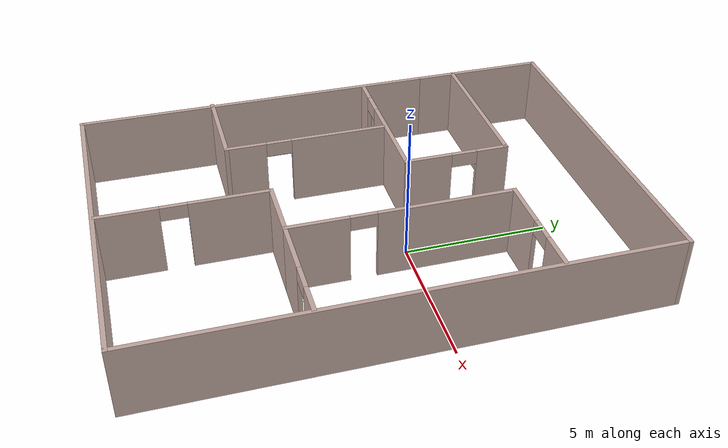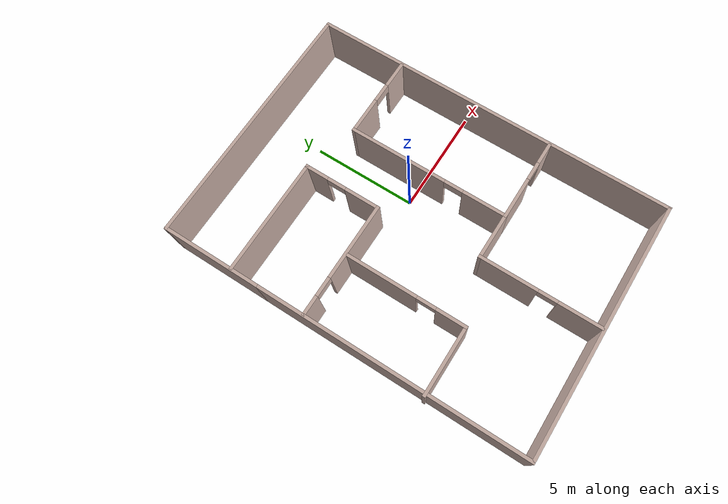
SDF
<?xml version='1.0'?>
<sdf version='1.7'>
  <model name='map3_level3'>
    <pose>-1.22338 -1.24775 0 0 -0 0</pose>
    <link name='Wall_11'>
      <collision name='Wall_11_Collision'>
        <geometry>
          <box>
            <size>5.5 0.15 2.5</size>
          </box>
        </geometry>
        <pose>0 0 1.25 0 -0 0</pose>
      </collision>
      <visual name='Wall_11_Visual'>
        <pose>0 0 1.25 0 -0 0</pose>
        <geometry>
          <box>
            <size>5.5 0.15 2.5</size>
          </box>
        </geometry>
        <material>
          <script>
            <uri>file://media/materials/scripts/gazebo.material</uri>
            <name>Gazebo/Grey</name>
          </script>
          <ambient>0.760784 0.662745 0.627451 1</ambient>
        </material>
        <meta>
          <layer>0</layer>
        </meta>
      </visual>
      <pose>-3.16034 5.33374 0 0 -0 0</pose>
    </link>
    <link name='Wall_12'>
      <pose>-0.485339 3.53374 0 0 -0 -1.5708</pose>
      <visual name='Wall_12_Visual_0'>
        <pose>-1.30105 0 1.25 0 -0 0</pose>
        <geometry>
          <box>
            <size>1.14789 0.15 2.5</size>
          </box>
        </geometry>
        <material>
          <script>
            <uri>file://media/materials/scripts/gazebo.material</uri>
            <name>Gazebo/Grey</name>
          </script>
          <ambient>0.760784 0.662745 0.627451 1</ambient>
        </material>
        <meta>
          <layer>0</layer>
        </meta>
      </visual>
      <collision name='Wall_12_Collision_0'>
        <geometry>
          <box>
            <size>1.14789 0.15 2.5</size>
          </box>
        </geometry>
        <pose>-1.30105 0 1.25 0 -0 0</pose>
      </collision>
      <visual name='Wall_12_Visual_1'>
        <pose>1.02395 0 1.25 0 -0 0</pose>
        <geometry>
          <box>
            <size>1.70211 0.15 2.5</size>
          </box>
        </geometry>
        <material>
          <script>
            <uri>file://media/materials/scripts/gazebo.material</uri>
            <name>Gazebo/Grey</name>
          </script>
          <ambient>0.760784 0.662745 0.627451 1</ambient>
        </material>
        <meta>
          <layer>0</layer>
        </meta>
      </visual>
      <collision name='Wall_12_Collision_1'>
        <geometry>
          <box>
            <size>1.70211 0.15 2.5</size>
          </box>
        </geometry>
        <pose>1.02395 0 1.25 0 -0 0</pose>
      </collision>
      <visual name='Wall_12_Visual_2'>
        <pose>-0.277106 0 2.25 0 -0 0</pose>
        <geometry>
          <box>
            <size>0.9 0.15 0.5</size>
          </box>
        </geometry>
        <material>
          <script>
            <uri>file://media/materials/scripts/gazebo.material</uri>
            <name>Gazebo/Grey</name>
          </script>
          <ambient>0.760784 0.662745 0.627451 1</ambient>
        </material>
        <meta>
          <layer>0</layer>
        </meta>
      </visual>
      <collision name='Wall_12_Collision_2'>
        <geometry>
          <box>
            <size>0.9 0.15 0.5</size>
          </box>
        </geometry>
        <pose>-0.277106 0 2.25 0 -0 0</pose>
      </collision>
    </link>
    <link name='Wall_13'>
      <pose>-3.16034 1.73374 0 0 -0 3.14159</pose>
      <visual name='Wall_13_Visual_0'>
        <pose>-0.926346 0 1.25 0 -0 0</pose>
        <geometry>
          <box>
            <size>3.64731 0.15 2.5</size>
          </box>
        </geometry>
        <material>
          <script>
            <uri>file://media/materials/scripts/gazebo.material</uri>
            <name>Gazebo/Grey</name>
          </script>
          <ambient>0.760784 0.662745 0.627451 1</ambient>
        </material>
        <meta>
          <layer>0</layer>
        </meta>
      </visual>
      <collision name='Wall_13_Collision_0'>
        <geometry>
          <box>
            <size>3.64731 0.15 2.5</size>
          </box>
        </geometry>
        <pose>-0.926346 0 1.25 0 -0 0</pose>
      </collision>
      <visual name='Wall_13_Visual_1'>
        <pose>2.27365 0 1.25 0 -0 0</pose>
        <geometry>
          <box>
            <size>0.952692 0.15 2.5</size>
          </box>
        </geometry>
        <material>
          <script>
            <uri>file://media/materials/scripts/gazebo.material</uri>
            <name>Gazebo/Grey</name>
          </script>
          <ambient>0.760784 0.662745 0.627451 1</ambient>
        </material>
        <meta>
          <layer>0</layer>
        </meta>
      </visual>
      <collision name='Wall_13_Collision_1'>
        <geometry>
          <box>
            <size>0.952692 0.15 2.5</size>
          </box>
        </geometry>
        <pose>2.27365 0 1.25 0 -0 0</pose>
      </collision>
      <visual name='Wall_13_Visual_2'>
        <pose>1.34731 0 2.25 0 -0 0</pose>
        <geometry>
          <box>
            <size>0.9 0.15 0.5</size>
          </box>
        </geometry>
        <material>
          <script>
            <uri>file://media/materials/scripts/gazebo.material</uri>
            <name>Gazebo/Grey</name>
          </script>
          <ambient>0.760784 0.662745 0.627451 1</ambient>
        </material>
        <meta>
          <layer>0</layer>
        </meta>
      </visual>
      <collision name='Wall_13_Collision_2'>
        <geometry>
          <box>
            <size>0.9 0.15 0.5</size>
          </box>
        </geometry>
        <pose>1.34731 0 2.25 0 -0 0</pose>
      </collision>
    </link>
    <link name='Wall_15'>
      <pose>3.96735 4.61084 0 0 -0 3.14159</pose>
      <visual name='Wall_15_Visual_0'>
        <pose>-1.3475 0 1.25 0 -0 0</pose>
        <geometry>
          <box>
            <size>1.305 0.15 2.5</size>
          </box>
        </geometry>
        <material>
          <script>
            <uri>file://media/materials/scripts/gazebo.material</uri>
            <name>Gazebo/Grey</name>
          </script>
          <ambient>0.760784 0.662745 0.627451 1</ambient>
        </material>
        <meta>
          <layer>0</layer>
        </meta>
      </visual>
      <collision name='Wall_15_Collision_0'>
        <geometry>
          <box>
            <size>1.305 0.15 2.5</size>
          </box>
        </geometry>
        <pose>-1.3475 0 1.25 0 -0 0</pose>
      </collision>
      <visual name='Wall_15_Visual_1'>
        <pose>1.1025 0 1.25 0 -0 0</pose>
        <geometry>
          <box>
            <size>1.795 0.15 2.5</size>
          </box>
        </geometry>
        <material>
          <script>
            <uri>file://media/materials/scripts/gazebo.material</uri>
            <name>Gazebo/Grey</name>
          </script>
          <ambient>0.760784 0.662745 0.627451 1</ambient>
        </material>
        <meta>
          <layer>0</layer>
        </meta>
      </visual>
      <collision name='Wall_15_Collision_1'>
        <geometry>
          <box>
            <size>1.795 0.15 2.5</size>
          </box>
        </geometry>
        <pose>1.1025 0 1.25 0 -0 0</pose>
      </collision>
      <visual name='Wall_15_Visual_2'>
        <pose>-0.245 0 2.25 0 -0 0</pose>
        <geometry>
          <box>
            <size>0.9 0.15 0.5</size>
          </box>
        </geometry>
        <material>
          <script>
            <uri>file://media/materials/scripts/gazebo.material</uri>
            <name>Gazebo/Grey</name>
          </script>
          <ambient>0.760784 0.662745 0.627451 1</ambient>
        </material>
        <meta>
          <layer>0</layer>
        </meta>
      </visual>
      <collision name='Wall_15_Collision_2'>
        <geometry>
          <box>
            <size>0.9 0.15 0.5</size>
          </box>
        </geometry>
        <pose>-0.245 0 2.25 0 -0 0</pose>
      </collision>
    </link>
    <link name='Wall_16'>
      <pose>2.04235 0.810843 0 0 -0 -1.5708</pose>
      <visual name='Wall_16_Visual_0'>
        <pose>-1.5225 0 1.25 0 -0 0</pose>
        <geometry>
          <box>
            <size>4.705 0.15 2.5</size>
          </box>
        </geometry>
        <material>
          <script>
            <uri>file://media/materials/scripts/gazebo.material</uri>
            <name>Gazebo/Grey</name>
          </script>
          <ambient>0.760784 0.662745 0.627451 1</ambient>
        </material>
        <meta>
          <layer>0</layer>
        </meta>
      </visual>
      <collision name='Wall_16_Collision_0'>
        <geometry>
          <box>
            <size>4.705 0.15 2.5</size>
          </box>
        </geometry>
        <pose>-1.5225 0 1.25 0 -0 0</pose>
      </collision>
      <visual name='Wall_16_Visual_1'>
        <pose>2.8025 0 1.25 0 -0 0</pose>
        <geometry>
          <box>
            <size>2.145 0.15 2.5</size>
          </box>
        </geometry>
        <material>
          <script>
            <uri>file://media/materials/scripts/gazebo.material</uri>
            <name>Gazebo/Grey</name>
          </script>
          <ambient>0.760784 0.662745 0.627451 1</ambient>
        </material>
        <meta>
          <layer>0</layer>
        </meta>
      </visual>
      <collision name='Wall_16_Collision_1'>
        <geometry>
          <box>
            <size>2.145 0.15 2.5</size>
          </box>
        </geometry>
        <pose>2.8025 0 1.25 0 -0 0</pose>
      </collision>
      <visual name='Wall_16_Visual_2'>
        <pose>1.28 0 2.25 0 -0 0</pose>
        <geometry>
          <box>
            <size>0.9 0.15 0.5</size>
          </box>
        </geometry>
        <material>
          <script>
            <uri>file://media/materials/scripts/gazebo.material</uri>
            <name>Gazebo/Grey</name>
          </script>
          <ambient>0.760784 0.662745 0.627451 1</ambient>
        </material>
        <meta>
          <layer>0</layer>
        </meta>
      </visual>
      <collision name='Wall_16_Collision_2'>
        <geometry>
          <box>
            <size>0.9 0.15 0.5</size>
          </box>
        </geometry>
        <pose>1.28 0 2.25 0 -0 0</pose>
      </collision>
    </link>
    <link name='Wall_17'>
      <pose>3.96735 -2.98916 0 0 -0 0</pose>
      <visual name='Wall_17_Visual_0'>
        <pose>-0.9825 0 1.25 0 -0 0</pose>
        <geometry>
          <box>
            <size>2.035 0.15 2.5</size>
          </box>
        </geometry>
        <material>
          <script>
            <uri>file://media/materials/scripts/gazebo.material</uri>
            <name>Gazebo/Grey</name>
          </script>
          <ambient>0.760784 0.662745 0.627451 1</ambient>
        </material>
        <meta>
          <layer>0</layer>
        </meta>
      </visual>
      <collision name='Wall_17_Collision_0'>
        <geometry>
          <box>
            <size>2.035 0.15 2.5</size>
          </box>
        </geometry>
        <pose>-0.9825 0 1.25 0 -0 0</pose>
      </collision>
      <visual name='Wall_17_Visual_1'>
        <pose>1.4675 0 1.25 0 -0 0</pose>
        <geometry>
          <box>
            <size>1.065 0.15 2.5</size>
          </box>
        </geometry>
        <material>
          <script>
            <uri>file://media/materials/scripts/gazebo.material</uri>
            <name>Gazebo/Grey</name>
          </script>
          <ambient>0.760784 0.662745 0.627451 1</ambient>
        </material>
        <meta>
          <layer>0</layer>
        </meta>
      </visual>
      <collision name='Wall_17_Collision_1'>
        <geometry>
          <box>
            <size>1.065 0.15 2.5</size>
          </box>
        </geometry>
        <pose>1.4675 0 1.25 0 -0 0</pose>
      </collision>
      <visual name='Wall_17_Visual_2'>
        <pose>0.485 0 2.25 0 -0 0</pose>
        <geometry>
          <box>
            <size>0.9 0.15 0.5</size>
          </box>
        </geometry>
        <material>
          <script>
            <uri>file://media/materials/scripts/gazebo.material</uri>
            <name>Gazebo/Grey</name>
          </script>
          <ambient>0.760784 0.662745 0.627451 1</ambient>
        </material>
        <meta>
          <layer>0</layer>
        </meta>
      </visual>
      <collision name='Wall_17_Collision_2'>
        <geometry>
          <box>
            <size>0.9 0.15 0.5</size>
          </box>
        </geometry>
        <pose>0.485 0 2.25 0 -0 0</pose>
      </collision>
    </link>
    <link name='Wall_19'>
      <pose>-2.86765 -1.18916 0 0 -0 -1.5708</pose>
      <visual name='Wall_19_Visual_0'>
        <pose>-1.1825 0 1.25 0 -0 0</pose>
        <geometry>
          <box>
            <size>3.385 0.15 2.5</size>
          </box>
        </geometry>
        <material>
          <script>
            <uri>file://media/materials/scripts/gazebo.material</uri>
            <name>Gazebo/Grey</name>
          </script>
          <ambient>0.760784 0.662745 0.627451 1</ambient>
        </material>
        <meta>
          <layer>0</layer>
        </meta>
      </visual>
      <collision name='Wall_19_Collision_0'>
        <geometry>
          <box>
            <size>3.385 0.15 2.5</size>
          </box>
        </geometry>
        <pose>-1.1825 0 1.25 0 -0 0</pose>
      </collision>
      <visual name='Wall_19_Visual_1'>
        <pose>2.1425 0 1.25 0 -0 0</pose>
        <geometry>
          <box>
            <size>1.465 0.15 2.5</size>
          </box>
        </geometry>
        <material>
          <script>
            <uri>file://media/materials/scripts/gazebo.material</uri>
            <name>Gazebo/Grey</name>
          </script>
          <ambient>0.760784 0.662745 0.627451 1</ambient>
        </material>
        <meta>
          <layer>0</layer>
        </meta>
      </visual>
      <collision name='Wall_19_Collision_1'>
        <geometry>
          <box>
            <size>1.465 0.15 2.5</size>
          </box>
        </geometry>
        <pose>2.1425 0 1.25 0 -0 0</pose>
      </collision>
      <visual name='Wall_19_Visual_2'>
        <pose>0.96 0 2.25 0 -0 0</pose>
        <geometry>
          <box>
            <size>0.9 0.15 0.5</size>
          </box>
        </geometry>
        <material>
          <script>
            <uri>file://media/materials/scripts/gazebo.material</uri>
            <name>Gazebo/Grey</name>
          </script>
          <ambient>0.760784 0.662745 0.627451 1</ambient>
        </material>
        <meta>
          <layer>0</layer>
        </meta>
      </visual>
      <collision name='Wall_19_Collision_2'>
        <geometry>
          <box>
            <size>0.9 0.15 0.5</size>
          </box>
        </geometry>
        <pose>0.96 0 2.25 0 -0 0</pose>
      </collision>
    </link>
    <link name='Wall_2'>
      <collision name='Wall_2_Collision'>
        <geometry>
          <box>
            <size>12.75 0.15 2.5</size>
          </box>
        </geometry>
        <pose>0 0 1.25 0 -0 0</pose>
      </collision>
      <visual name='Wall_2_Visual'>
        <pose>0 0 1.25 0 -0 0</pose>
        <geometry>
          <box>
            <size>12.75 0.15 2.5</size>
          </box>
        </geometry>
        <material>
          <script>
            <uri>file://media/materials/scripts/gazebo.material</uri>
            <name>Gazebo/Grey</name>
          </script>
          <ambient>0.760784 0.662745 0.627451 1</ambient>
        </material>
        <meta>
          <layer>0</layer>
        </meta>
      </visual>
      <pose>-5.88235 -2.375 0 0 -0 -1.5708</pose>
    </link>
    <link name='Wall_20'>
      <collision name='Wall_20_Collision'>
        <geometry>
          <box>
            <size>3.25 0.15 2.5</size>
          </box>
        </geometry>
        <pose>0 0 1.25 0 -0 0</pose>
      </collision>
      <visual name='Wall_20_Visual'>
        <pose>0 0 1.25 0 -0 0</pose>
        <geometry>
          <box>
            <size>3.25 0.15 2.5</size>
          </box>
        </geometry>
        <material>
          <script>
            <uri>file://media/materials/scripts/gazebo.material</uri>
            <name>Gazebo/Grey</name>
          </script>
          <ambient>0.760784 0.662745 0.627451 1</ambient>
        </material>
        <meta>
          <layer>0</layer>
        </meta>
      </visual>
      <pose>-4.41765 -3.98916 0 0 -0 3.14159</pose>
    </link>
    <link name='Wall_22'>
      <collision name='Wall_22_Collision'>
        <geometry>
          <box>
            <size>2.25 0.15 2.5</size>
          </box>
        </geometry>
        <pose>0 0 1.25 0 -0 0</pose>
      </collision>
      <visual name='Wall_22_Visual'>
        <pose>0 0 1.25 0 -0 0</pose>
        <geometry>
          <box>
            <size>2.25 0.15 2.5</size>
          </box>
        </geometry>
        <material>
          <script>
            <uri>file://media/materials/scripts/gazebo.material</uri>
            <name>Gazebo/Grey</name>
          </script>
          <ambient>0.760784 0.662745 0.627451 1</ambient>
        </material>
        <meta>
          <layer>0</layer>
        </meta>
      </visual>
      <pose>0.992353 -2.98916 0 0 -0 3.14159</pose>
    </link>
    <link name='Wall_23'>
      <pose>-0.057647 -5.78916 0 0 -0 -1.5708</pose>
      <visual name='Wall_23_Visual_0'>
        <pose>-1.4825 0 1.25 0 -0 0</pose>
        <geometry>
          <box>
            <size>2.785 0.15 2.5</size>
          </box>
        </geometry>
        <material>
          <script>
            <uri>file://media/materials/scripts/gazebo.material</uri>
            <name>Gazebo/Grey</name>
          </script>
          <ambient>0.760784 0.662745 0.627451 1</ambient>
        </material>
        <meta>
          <layer>0</layer>
        </meta>
      </visual>
      <collision name='Wall_23_Collision_0'>
        <geometry>
          <box>
            <size>2.785 0.15 2.5</size>
          </box>
        </geometry>
        <pose>-1.4825 0 1.25 0 -0 0</pose>
      </collision>
      <visual name='Wall_23_Visual_1'>
        <pose>1.8425 0 1.25 0 -0 0</pose>
        <geometry>
          <box>
            <size>2.065 0.15 2.5</size>
          </box>
        </geometry>
        <material>
          <script>
            <uri>file://media/materials/scripts/gazebo.material</uri>
            <name>Gazebo/Grey</name>
          </script>
          <ambient>0.760784 0.662745 0.627451 1</ambient>
        </material>
        <meta>
          <layer>0</layer>
        </meta>
      </visual>
      <collision name='Wall_23_Collision_1'>
        <geometry>
          <box>
            <size>2.065 0.15 2.5</size>
          </box>
        </geometry>
        <pose>1.8425 0 1.25 0 -0 0</pose>
      </collision>
      <visual name='Wall_23_Visual_2'>
        <pose>0.36 0 2.25 0 -0 0</pose>
        <geometry>
          <box>
            <size>0.9 0.15 0.5</size>
          </box>
        </geometry>
        <material>
          <script>
            <uri>file://media/materials/scripts/gazebo.material</uri>
            <name>Gazebo/Grey</name>
          </script>
          <ambient>0.760784 0.662745 0.627451 1</ambient>
        </material>
        <meta>
          <layer>0</layer>
        </meta>
      </visual>
      <collision name='Wall_23_Collision_2'>
        <geometry>
          <box>
            <size>0.9 0.15 0.5</size>
          </box>
        </geometry>
        <pose>0.36 0 2.25 0 -0 0</pose>
      </collision>
    </link>
    <link name='Wall_3'>
      <collision name='Wall_3_Collision'>
        <geometry>
          <box>
            <size>12 0.15 2.5</size>
          </box>
        </geometry>
        <pose>0 0 1.25 0 -0 0</pose>
      </collision>
      <visual name='Wall_3_Visual'>
        <pose>0 0 1.25 0 -0 0</pose>
        <geometry>
          <box>
            <size>12 0.15 2.5</size>
          </box>
        </geometry>
        <material>
          <script>
            <uri>file://media/materials/scripts/gazebo.material</uri>
            <name>Gazebo/Grey</name>
          </script>
          <ambient>0.760784 0.662745 0.627451 1</ambient>
        </material>
        <meta>
          <layer>0</layer>
        </meta>
      </visual>
      <pose>0.042645 -8.675 0 0 -0 0</pose>
    </link>
    <link name='Wall_4'>
      <collision name='Wall_4_Collision'>
        <geometry>
          <box>
            <size>17.5 0.15 2.5</size>
          </box>
        </geometry>
        <pose>0 0 1.25 0 -0 0</pose>
      </collision>
      <visual name='Wall_4_Visual'>
        <pose>0 0 1.25 0 -0 0</pose>
        <geometry>
          <box>
            <size>17.5 0.15 2.5</size>
          </box>
        </geometry>
        <material>
          <script>
            <uri>file://media/materials/scripts/gazebo.material</uri>
            <name>Gazebo/Grey</name>
          </script>
          <ambient>0.760784 0.662745 0.627451 1</ambient>
        </material>
        <meta>
          <layer>0</layer>
        </meta>
      </visual>
      <pose>5.96765 0 0 0 -0 1.5708</pose>
    </link>
    <link name='Wall_5'>
      <collision name='Wall_5_Collision'>
        <geometry>
          <box>
            <size>12 0.15 2.5</size>
          </box>
        </geometry>
        <pose>0 0 1.25 0 -0 0</pose>
      </collision>
      <visual name='Wall_5_Visual'>
        <pose>0 0 1.25 0 -0 0</pose>
        <geometry>
          <box>
            <size>12 0.15 2.5</size>
          </box>
        </geometry>
        <material>
          <script>
            <uri>file://media/materials/scripts/gazebo.material</uri>
            <name>Gazebo/Grey</name>
          </script>
          <ambient>0.760784 0.662745 0.627451 1</ambient>
        </material>
        <meta>
          <layer>0</layer>
        </meta>
      </visual>
      <pose>0.042645 8.675 0 0 -0 3.14159</pose>
    </link>
    <link name='Wall_6'>
      <collision name='Wall_6_Collision'>
        <geometry>
          <box>
            <size>4.75 0.15 2.5</size>
          </box>
        </geometry>
        <pose>0 0 1.25 0 -0 0</pose>
      </collision>
      <visual name='Wall_6_Visual'>
        <pose>0 0 1.25 0 -0 0</pose>
        <geometry>
          <box>
            <size>4.75 0.15 2.5</size>
          </box>
        </geometry>
        <material>
          <script>
            <uri>file://media/materials/scripts/gazebo.material</uri>
            <name>Gazebo/Grey</name>
          </script>
          <ambient>0.760784 0.662745 0.627451 1</ambient>
        </material>
        <meta>
          <layer>0</layer>
        </meta>
      </visual>
      <pose>-5.88235 6.375 0 0 -0 -1.5708</pose>
    </link>
    <static>1</static>
  </model>
</sdf>
